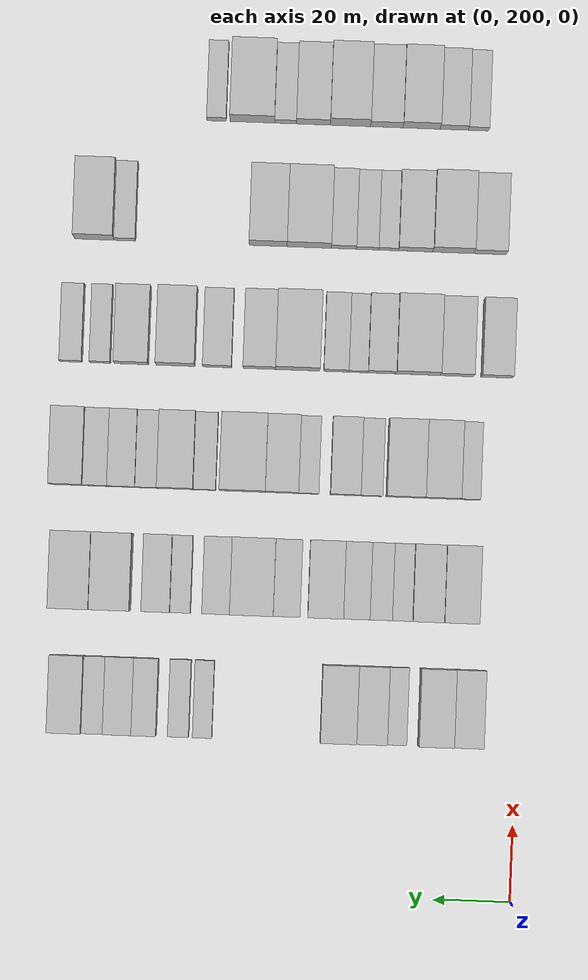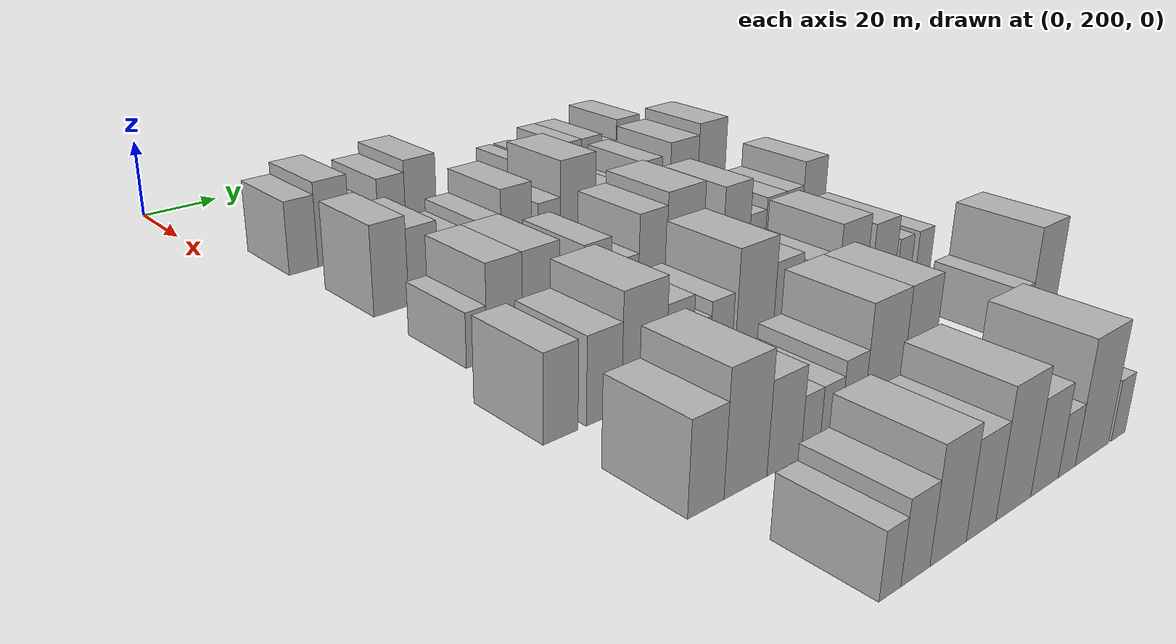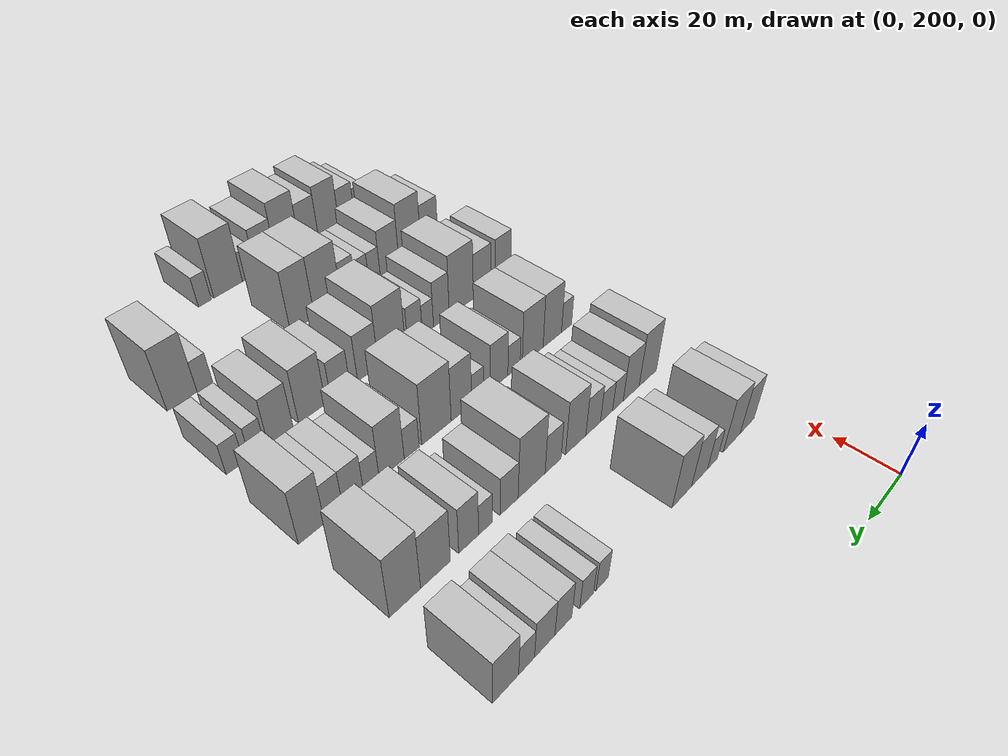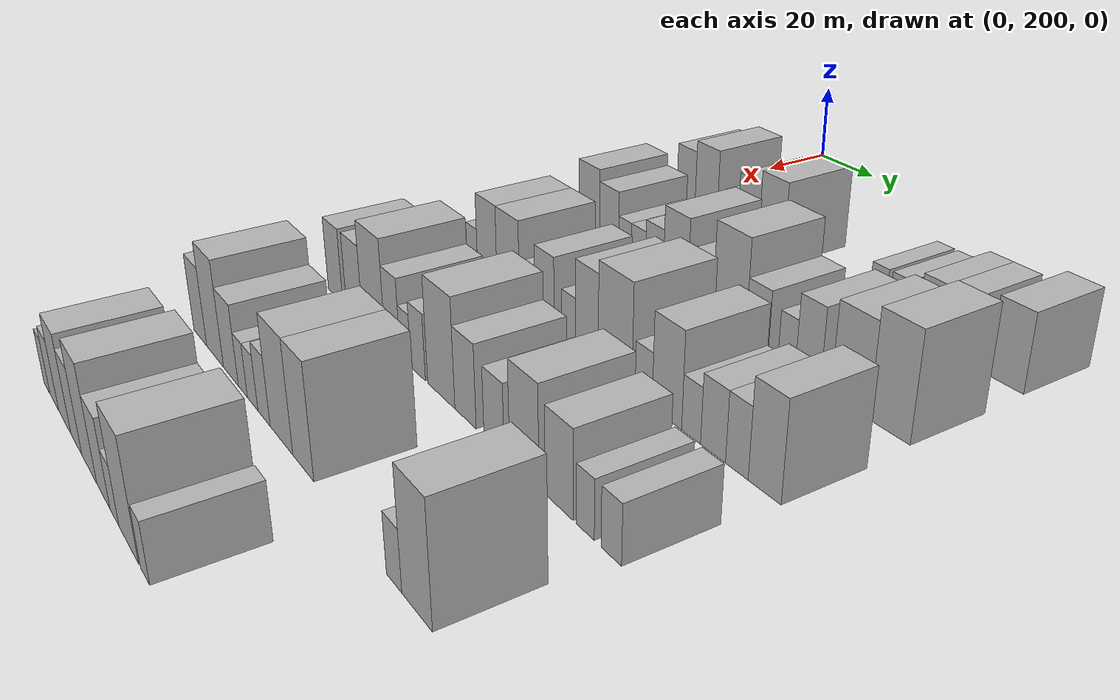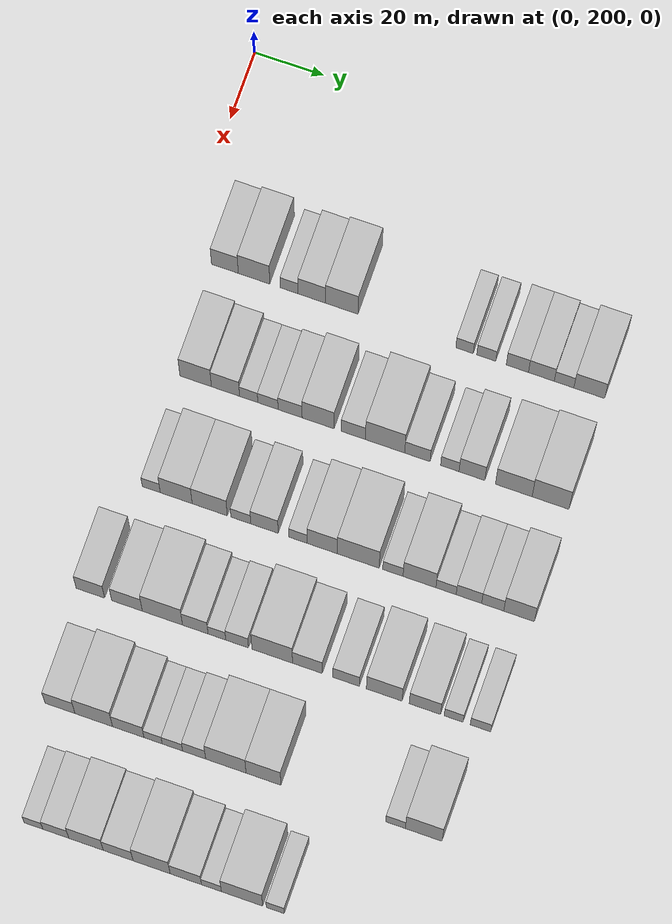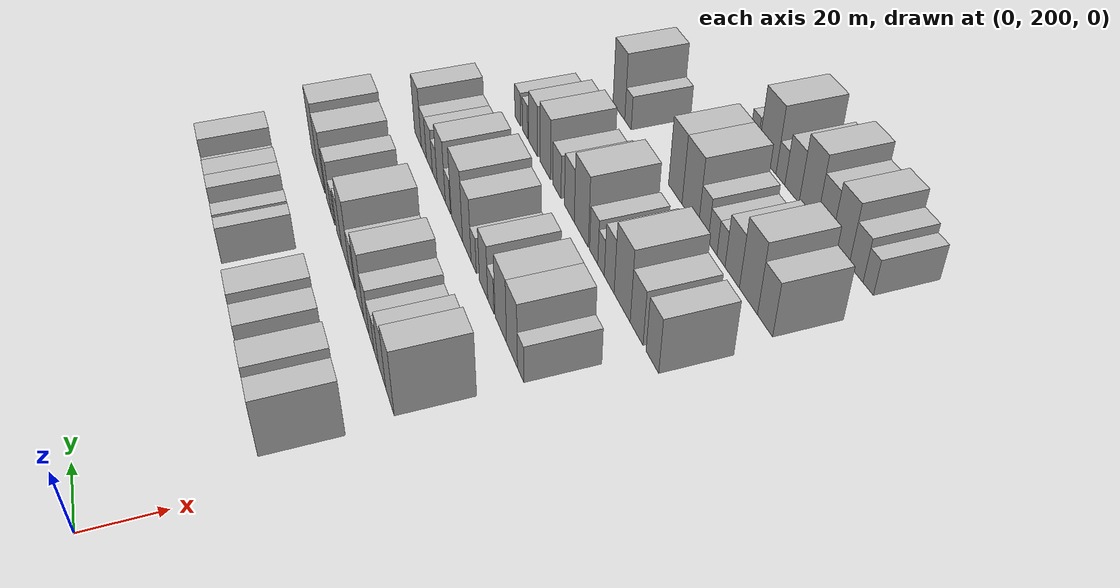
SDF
<sdf version="1.6">
 <world name="default">
  <model name="building_86">
   <static>1</static>
   <pose>50.0000 212.5925 0 0.000000 0.000000 0.000000</pose>
   <link name="link">
    <pose>0 0 9.00 0 0 0</pose>
    <collision name="collision"><geometry><box><size>20.0000 7.6918 18.0000</size></box></geometry></collision>
    <visual name="visual">
     <cast_shadows>0</cast_shadows>
     <geometry><box><size>20.0000 7.6918 18.0000</size></box></geometry>
     <material>
      <script>
       <uri>model://HANNAS_wall/materials/scripts</uri>
       <uri>model://HANNAS_wall/materials/textures</uri>
       <name>vrc/HANNAS_wall</name>
      </script>
     </material>
    </visual>
   </link>
  </model>
  <model name="building_87">
   <static>1</static>
   <pose>50.0000 220.9627 0 0.000000 0.000000 0.000000</pose>
   <link name="link">
    <pose>0 0 10.50 0 0 0</pose>
    <collision name="collision"><geometry><box><size>20.0000 9.0485 21.0000</size></box></geometry></collision>
    <visual name="visual">
     <cast_shadows>0</cast_shadows>
     <geometry><box><size>20.0000 9.0485 21.0000</size></box></geometry>
     <material>
      <script>
       <uri>model://HANNAS_wall/materials/scripts</uri>
       <uri>model://HANNAS_wall/materials/textures</uri>
       <name>vrc/HANNAS_wall</name>
      </script>
     </material>
    </visual>
   </link>
  </model>
  <model name="building_88">
   <static>1</static>
   <pose>50.0000 231.0170 0 0.000000 0.000000 0.000000</pose>
   <link name="link">
    <pose>0 0 6.00 0 0 0</pose>
    <collision name="collision"><geometry><box><size>20.0000 5.0601 12.0000</size></box></geometry></collision>
    <visual name="visual">
     <cast_shadows>0</cast_shadows>
     <geometry><box><size>20.0000 5.0601 12.0000</size></box></geometry>
     <material>
      <script>
       <uri>model://HANNAS_wall/materials/scripts</uri>
       <uri>model://HANNAS_wall/materials/textures</uri>
       <name>vrc/HANNAS_wall</name>
      </script>
     </material>
    </visual>
   </link>
  </model>
  <model name="building_89">
   <static>1</static>
   <pose>50.0000 237.5158 0 0.000000 0.000000 0.000000</pose>
   <link name="link">
    <pose>0 0 9.00 0 0 0</pose>
    <collision name="collision"><geometry><box><size>20.0000 7.9375 18.0000</size></box></geometry></collision>
    <visual name="visual">
     <cast_shadows>0</cast_shadows>
     <geometry><box><size>20.0000 7.9375 18.0000</size></box></geometry>
     <material>
      <script>
       <uri>model://HANNAS_wall/materials/scripts</uri>
       <uri>model://HANNAS_wall/materials/textures</uri>
       <name>vrc/HANNAS_wall</name>
      </script>
     </material>
    </visual>
   </link>
  </model>
  <model name="building_90">
   <static>1</static>
   <pose>50.0000 246.1393 0 0.000000 0.000000 0.000000</pose>
   <link name="link">
    <pose>0 0 10.50 0 0 0</pose>
    <collision name="collision"><geometry><box><size>20.0000 9.3094 21.0000</size></box></geometry></collision>
    <visual name="visual">
     <cast_shadows>0</cast_shadows>
     <geometry><box><size>20.0000 9.3094 21.0000</size></box></geometry>
     <material>
      <script>
       <uri>model://HANNAS_wall/materials/scripts</uri>
       <uri>model://HANNAS_wall/materials/textures</uri>
       <name>vrc/HANNAS_wall</name>
      </script>
     </material>
    </visual>
   </link>
  </model>
  <model name="building_91">
   <static>1</static>
   <pose>50.0000 281.2585 0 0.000000 0.000000 0.000000</pose>
   <link name="link">
    <pose>0 0 6.00 0 0 0</pose>
    <collision name="collision"><geometry><box><size>20.0000 4.9763 12.0000</size></box></geometry></collision>
    <visual name="visual">
     <cast_shadows>0</cast_shadows>
     <geometry><box><size>20.0000 4.9763 12.0000</size></box></geometry>
     <material>
      <script>
       <uri>model://HANNAS_wall/materials/scripts</uri>
       <uri>model://HANNAS_wall/materials/textures</uri>
       <name>vrc/HANNAS_wall</name>
      </script>
     </material>
    </visual>
   </link>
  </model>
  <model name="building_92">
   <static>1</static>
   <pose>50.0000 287.4576 0 0.000000 0.000000 0.000000</pose>
   <link name="link">
    <pose>0 0 6.00 0 0 0</pose>
    <collision name="collision"><geometry><box><size>20.0000 5.4220 12.0000</size></box></geometry></collision>
    <visual name="visual">
     <cast_shadows>0</cast_shadows>
     <geometry><box><size>20.0000 5.4220 12.0000</size></box></geometry>
     <material>
      <script>
       <uri>model://HANNAS_wall/materials/scripts</uri>
       <uri>model://HANNAS_wall/materials/textures</uri>
       <name>vrc/HANNAS_wall</name>
      </script>
     </material>
    </visual>
   </link>
  </model>
  <model name="building_93">
   <static>1</static>
   <pose>50.0000 296.3389 0 0.000000 0.000000 0.000000</pose>
   <link name="link">
    <pose>0 0 7.50 0 0 0</pose>
    <collision name="collision"><geometry><box><size>20.0000 6.3406 15.0000</size></box></geometry></collision>
    <visual name="visual">
     <cast_shadows>0</cast_shadows>
     <geometry><box><size>20.0000 6.3406 15.0000</size></box></geometry>
     <material>
      <script>
       <uri>model://HANNAS_wall/materials/scripts</uri>
       <uri>model://HANNAS_wall/materials/textures</uri>
       <name>vrc/HANNAS_wall</name>
      </script>
     </material>
    </visual>
   </link>
  </model>
  <model name="building_94">
   <static>1</static>
   <pose>50.0000 303.1866 0 0.000000 0.000000 0.000000</pose>
   <link name="link">
    <pose>0 0 7.50 0 0 0</pose>
    <collision name="collision"><geometry><box><size>20.0000 7.3548 15.0000</size></box></geometry></collision>
    <visual name="visual">
     <cast_shadows>0</cast_shadows>
     <geometry><box><size>20.0000 7.3548 15.0000</size></box></geometry>
     <material>
      <script>
       <uri>model://HANNAS_wall/materials/scripts</uri>
       <uri>model://HANNAS_wall/materials/textures</uri>
       <name>vrc/HANNAS_wall</name>
      </script>
     </material>
    </visual>
   </link>
  </model>
  <model name="building_95">
   <static>1</static>
   <pose>50.0000 309.6512 0 0.000000 0.000000 0.000000</pose>
   <link name="link">
    <pose>0 0 6.00 0 0 0</pose>
    <collision name="collision"><geometry><box><size>20.0000 5.5743 12.0000</size></box></geometry></collision>
    <visual name="visual">
     <cast_shadows>0</cast_shadows>
     <geometry><box><size>20.0000 5.5743 12.0000</size></box></geometry>
     <material>
      <script>
       <uri>model://HANNAS_wall/materials/scripts</uri>
       <uri>model://HANNAS_wall/materials/textures</uri>
       <name>vrc/HANNAS_wall</name>
      </script>
     </material>
    </visual>
   </link>
  </model>
  <model name="building_96">
   <static>1</static>
   <pose>50.0000 316.8188 0 0.000000 0.000000 0.000000</pose>
   <link name="link">
    <pose>0 0 9.00 0 0 0</pose>
    <collision name="collision"><geometry><box><size>20.0000 8.7610 18.0000</size></box></geometry></collision>
    <visual name="visual">
     <cast_shadows>0</cast_shadows>
     <geometry><box><size>20.0000 8.7610 18.0000</size></box></geometry>
     <material>
      <script>
       <uri>model://HANNAS_wall/materials/scripts</uri>
       <uri>model://HANNAS_wall/materials/textures</uri>
       <name>vrc/HANNAS_wall</name>
      </script>
     </material>
    </visual>
   </link>
  </model>
  <model name="building_207">
   <static>1</static>
   <pose>82.0000 215.5787 0 0.000000 0.000000 0.000000</pose>
   <link name="link">
    <pose>0 0 10.50 0 0 0</pose>
    <collision name="collision"><geometry><box><size>20.0000 8.9983 21.0000</size></box></geometry></collision>
    <visual name="visual">
     <cast_shadows>0</cast_shadows>
     <geometry><box><size>20.0000 8.9983 21.0000</size></box></geometry>
     <material>
      <script>
       <uri>model://HANNAS_wall/materials/scripts</uri>
       <uri>model://HANNAS_wall/materials/textures</uri>
       <name>vrc/HANNAS_wall</name>
      </script>
     </material>
    </visual>
   </link>
  </model>
  <model name="building_208">
   <static>1</static>
   <pose>82.0000 224.1093 0 0.000000 0.000000 0.000000</pose>
   <link name="link">
    <pose>0 0 9.00 0 0 0</pose>
    <collision name="collision"><geometry><box><size>20.0000 8.0628 18.0000</size></box></geometry></collision>
    <visual name="visual">
     <cast_shadows>0</cast_shadows>
     <geometry><box><size>20.0000 8.0628 18.0000</size></box></geometry>
     <material>
      <script>
       <uri>model://HANNAS_wall/materials/scripts</uri>
       <uri>model://HANNAS_wall/materials/textures</uri>
       <name>vrc/HANNAS_wall</name>
      </script>
     </material>
    </visual>
   </link>
  </model>
  <model name="building_209">
   <static>1</static>
   <pose>82.0000 230.7448 0 0.000000 0.000000 0.000000</pose>
   <link name="link">
    <pose>0 0 6.00 0 0 0</pose>
    <collision name="collision"><geometry><box><size>20.0000 5.2084 12.0000</size></box></geometry></collision>
    <visual name="visual">
     <cast_shadows>0</cast_shadows>
     <geometry><box><size>20.0000 5.2084 12.0000</size></box></geometry>
     <material>
      <script>
       <uri>model://HANNAS_wall/materials/scripts</uri>
       <uri>model://HANNAS_wall/materials/textures</uri>
       <name>vrc/HANNAS_wall</name>
      </script>
     </material>
    </visual>
   </link>
  </model>
  <model name="building_210">
   <static>1</static>
   <pose>82.0000 236.2536 0 0.000000 0.000000 0.000000</pose>
   <link name="link">
    <pose>0 0 6.00 0 0 0</pose>
    <collision name="collision"><geometry><box><size>20.0000 5.8092 12.0000</size></box></geometry></collision>
    <visual name="visual">
     <cast_shadows>0</cast_shadows>
     <geometry><box><size>20.0000 5.8092 12.0000</size></box></geometry>
     <material>
      <script>
       <uri>model://HANNAS_wall/materials/scripts</uri>
       <uri>model://HANNAS_wall/materials/textures</uri>
       <name>vrc/HANNAS_wall</name>
      </script>
     </material>
    </visual>
   </link>
  </model>
  <model name="building_211">
   <static>1</static>
   <pose>82.0000 242.5918 0 0.000000 0.000000 0.000000</pose>
   <link name="link">
    <pose>0 0 7.50 0 0 0</pose>
    <collision name="collision"><geometry><box><size>20.0000 6.8672 15.0000</size></box></geometry></collision>
    <visual name="visual">
     <cast_shadows>0</cast_shadows>
     <geometry><box><size>20.0000 6.8672 15.0000</size></box></geometry>
     <material>
      <script>
       <uri>model://HANNAS_wall/materials/scripts</uri>
       <uri>model://HANNAS_wall/materials/textures</uri>
       <name>vrc/HANNAS_wall</name>
      </script>
     </material>
    </visual>
   </link>
  </model>
  <model name="building_212">
   <static>1</static>
   <pose>82.0000 250.5937 0 0.000000 0.000000 0.000000</pose>
   <link name="link">
    <pose>0 0 10.50 0 0 0</pose>
    <collision name="collision"><geometry><box><size>20.0000 9.1366 21.0000</size></box></geometry></collision>
    <visual name="visual">
     <cast_shadows>0</cast_shadows>
     <geometry><box><size>20.0000 9.1366 21.0000</size></box></geometry>
     <material>
      <script>
       <uri>model://HANNAS_wall/materials/scripts</uri>
       <uri>model://HANNAS_wall/materials/textures</uri>
       <name>vrc/HANNAS_wall</name>
      </script>
     </material>
    </visual>
   </link>
  </model>
  <model name="building_213">
   <static>1</static>
   <pose>82.0000 260.6121 0 0.000000 0.000000 0.000000</pose>
   <link name="link">
    <pose>0 0 7.50 0 0 0</pose>
    <collision name="collision"><geometry><box><size>20.0000 6.9003 15.0000</size></box></geometry></collision>
    <visual name="visual">
     <cast_shadows>0</cast_shadows>
     <geometry><box><size>20.0000 6.9003 15.0000</size></box></geometry>
     <material>
      <script>
       <uri>model://HANNAS_wall/materials/scripts</uri>
       <uri>model://HANNAS_wall/materials/textures</uri>
       <name>vrc/HANNAS_wall</name>
      </script>
     </material>
    </visual>
   </link>
  </model>
  <model name="building_214">
   <static>1</static>
   <pose>82.0000 269.6684 0 0.000000 0.000000 0.000000</pose>
   <link name="link">
    <pose>0 0 12.00 0 0 0</pose>
    <collision name="collision"><geometry><box><size>20.0000 11.2123 24.0000</size></box></geometry></collision>
    <visual name="visual">
     <cast_shadows>0</cast_shadows>
     <geometry><box><size>20.0000 11.2123 24.0000</size></box></geometry>
     <material>
      <script>
       <uri>model://HANNAS_wall/materials/scripts</uri>
       <uri>model://HANNAS_wall/materials/textures</uri>
       <name>vrc/HANNAS_wall</name>
      </script>
     </material>
    </visual>
   </link>
  </model>
  <model name="building_215">
   <static>1</static>
   <pose>82.0000 278.8816 0 0.000000 0.000000 0.000000</pose>
   <link name="link">
    <pose>0 0 7.50 0 0 0</pose>
    <collision name="collision"><geometry><box><size>20.0000 7.2141 15.0000</size></box></geometry></collision>
    <visual name="visual">
     <cast_shadows>0</cast_shadows>
     <geometry><box><size>20.0000 7.2141 15.0000</size></box></geometry>
     <material>
      <script>
       <uri>model://HANNAS_wall/materials/scripts</uri>
       <uri>model://HANNAS_wall/materials/textures</uri>
       <name>vrc/HANNAS_wall</name>
      </script>
     </material>
    </visual>
   </link>
  </model>
  <model name="building_216">
   <static>1</static>
   <pose>82.0000 288.1062 0 0.000000 0.000000 0.000000</pose>
   <link name="link">
    <pose>0 0 6.00 0 0 0</pose>
    <collision name="collision"><geometry><box><size>20.0000 5.2350 12.0000</size></box></geometry></collision>
    <visual name="visual">
     <cast_shadows>0</cast_shadows>
     <geometry><box><size>20.0000 5.2350 12.0000</size></box></geometry>
     <material>
      <script>
       <uri>model://HANNAS_wall/materials/scripts</uri>
       <uri>model://HANNAS_wall/materials/textures</uri>
       <name>vrc/HANNAS_wall</name>
      </script>
     </material>
    </visual>
   </link>
  </model>
  <model name="building_217">
   <static>1</static>
   <pose>82.0000 294.3972 0 0.000000 0.000000 0.000000</pose>
   <link name="link">
    <pose>0 0 9.00 0 0 0</pose>
    <collision name="collision"><geometry><box><size>20.0000 7.3469 18.0000</size></box></geometry></collision>
    <visual name="visual">
     <cast_shadows>0</cast_shadows>
     <geometry><box><size>20.0000 7.3469 18.0000</size></box></geometry>
     <material>
      <script>
       <uri>model://HANNAS_wall/materials/scripts</uri>
       <uri>model://HANNAS_wall/materials/textures</uri>
       <name>vrc/HANNAS_wall</name>
      </script>
     </material>
    </visual>
   </link>
  </model>
  <model name="building_218">
   <static>1</static>
   <pose>82.0000 306.2786 0 0.000000 0.000000 0.000000</pose>
   <link name="link">
    <pose>0 0 10.50 0 0 0</pose>
    <collision name="collision"><geometry><box><size>20.0000 10.4159 21.0000</size></box></geometry></collision>
    <visual name="visual">
     <cast_shadows>0</cast_shadows>
     <geometry><box><size>20.0000 10.4159 21.0000</size></box></geometry>
     <material>
      <script>
       <uri>model://HANNAS_wall/materials/scripts</uri>
       <uri>model://HANNAS_wall/materials/textures</uri>
       <name>vrc/HANNAS_wall</name>
      </script>
     </material>
    </visual>
   </link>
  </model>
  <model name="building_219">
   <static>1</static>
   <pose>82.0000 316.7178 0 0.000000 0.000000 0.000000</pose>
   <link name="link">
    <pose>0 0 12.00 0 0 0</pose>
    <collision name="collision"><geometry><box><size>20.0000 10.4625 24.0000</size></box></geometry></collision>
    <visual name="visual">
     <cast_shadows>0</cast_shadows>
     <geometry><box><size>20.0000 10.4625 24.0000</size></box></geometry>
     <material>
      <script>
       <uri>model://HANNAS_wall/materials/scripts</uri>
       <uri>model://HANNAS_wall/materials/textures</uri>
       <name>vrc/HANNAS_wall</name>
      </script>
     </material>
    </visual>
   </link>
  </model>
  <model name="building_328">
   <static>1</static>
   <pose>114.0000 214.3067 0 0.000000 0.000000 0.000000</pose>
   <link name="link">
    <pose>0 0 6.00 0 0 0</pose>
    <collision name="collision"><geometry><box><size>20.0000 5.1264 12.0000</size></box></geometry></collision>
    <visual name="visual">
     <cast_shadows>0</cast_shadows>
     <geometry><box><size>20.0000 5.1264 12.0000</size></box></geometry>
     <material>
      <script>
       <uri>model://HANNAS_wall/materials/scripts</uri>
       <uri>model://HANNAS_wall/materials/textures</uri>
       <name>vrc/HANNAS_wall</name>
      </script>
     </material>
    </visual>
   </link>
  </model>
  <model name="building_329">
   <static>1</static>
   <pose>114.0000 221.4326 0 0.000000 0.000000 0.000000</pose>
   <link name="link">
    <pose>0 0 10.50 0 0 0</pose>
    <collision name="collision"><geometry><box><size>20.0000 9.1253 21.0000</size></box></geometry></collision>
    <visual name="visual">
     <cast_shadows>0</cast_shadows>
     <geometry><box><size>20.0000 9.1253 21.0000</size></box></geometry>
     <material>
      <script>
       <uri>model://HANNAS_wall/materials/scripts</uri>
       <uri>model://HANNAS_wall/materials/textures</uri>
       <name>vrc/HANNAS_wall</name>
      </script>
     </material>
    </visual>
   </link>
  </model>
  <model name="building_330">
   <static>1</static>
   <pose>114.0000 230.9983 0 0.000000 0.000000 0.000000</pose>
   <link name="link">
    <pose>0 0 10.50 0 0 0</pose>
    <collision name="collision"><geometry><box><size>20.0000 10.0061 21.0000</size></box></geometry></collision>
    <visual name="visual">
     <cast_shadows>0</cast_shadows>
     <geometry><box><size>20.0000 10.0061 21.0000</size></box></geometry>
     <material>
      <script>
       <uri>model://HANNAS_wall/materials/scripts</uri>
       <uri>model://HANNAS_wall/materials/textures</uri>
       <name>vrc/HANNAS_wall</name>
      </script>
     </material>
    </visual>
   </link>
  </model>
  <model name="building_331">
   <static>1</static>
   <pose>114.0000 239.8361 0 0.000000 0.000000 0.000000</pose>
   <link name="link">
    <pose>0 0 6.00 0 0 0</pose>
    <collision name="collision"><geometry><box><size>20.0000 5.6695 12.0000</size></box></geometry></collision>
    <visual name="visual">
     <cast_shadows>0</cast_shadows>
     <geometry><box><size>20.0000 5.6695 12.0000</size></box></geometry>
     <material>
      <script>
       <uri>model://HANNAS_wall/materials/scripts</uri>
       <uri>model://HANNAS_wall/materials/textures</uri>
       <name>vrc/HANNAS_wall</name>
      </script>
     </material>
    </visual>
   </link>
  </model>
  <model name="building_332">
   <static>1</static>
   <pose>114.0000 246.5737 0 0.000000 0.000000 0.000000</pose>
   <link name="link">
    <pose>0 0 9.00 0 0 0</pose>
    <collision name="collision"><geometry><box><size>20.0000 7.8057 18.0000</size></box></geometry></collision>
    <visual name="visual">
     <cast_shadows>0</cast_shadows>
     <geometry><box><size>20.0000 7.8057 18.0000</size></box></geometry>
     <material>
      <script>
       <uri>model://HANNAS_wall/materials/scripts</uri>
       <uri>model://HANNAS_wall/materials/textures</uri>
       <name>vrc/HANNAS_wall</name>
      </script>
     </material>
    </visual>
   </link>
  </model>
  <model name="building_333">
   <static>1</static>
   <pose>114.0000 256.0906 0 0.000000 0.000000 0.000000</pose>
   <link name="link">
    <pose>0 0 6.00 0 0 0</pose>
    <collision name="collision"><geometry><box><size>20.0000 5.2281 12.0000</size></box></geometry></collision>
    <visual name="visual">
     <cast_shadows>0</cast_shadows>
     <geometry><box><size>20.0000 5.2281 12.0000</size></box></geometry>
     <material>
      <script>
       <uri>model://HANNAS_wall/materials/scripts</uri>
       <uri>model://HANNAS_wall/materials/textures</uri>
       <name>vrc/HANNAS_wall</name>
      </script>
     </material>
    </visual>
   </link>
  </model>
  <model name="building_334">
   <static>1</static>
   <pose>114.0000 262.9880 0 0.000000 0.000000 0.000000</pose>
   <link name="link">
    <pose>0 0 10.50 0 0 0</pose>
    <collision name="collision"><geometry><box><size>20.0000 8.5668 21.0000</size></box></geometry></collision>
    <visual name="visual">
     <cast_shadows>0</cast_shadows>
     <geometry><box><size>20.0000 8.5668 21.0000</size></box></geometry>
     <material>
      <script>
       <uri>model://HANNAS_wall/materials/scripts</uri>
       <uri>model://HANNAS_wall/materials/textures</uri>
       <name>vrc/HANNAS_wall</name>
      </script>
     </material>
    </visual>
   </link>
  </model>
  <model name="building_335">
   <static>1</static>
   <pose>114.0000 273.2114 0 0.000000 0.000000 0.000000</pose>
   <link name="link">
    <pose>0 0 12.00 0 0 0</pose>
    <collision name="collision"><geometry><box><size>20.0000 11.8800 24.0000</size></box></geometry></collision>
    <visual name="visual">
     <cast_shadows>0</cast_shadows>
     <geometry><box><size>20.0000 11.8800 24.0000</size></box></geometry>
     <material>
      <script>
       <uri>model://HANNAS_wall/materials/scripts</uri>
       <uri>model://HANNAS_wall/materials/textures</uri>
       <name>vrc/HANNAS_wall</name>
      </script>
     </material>
    </visual>
   </link>
  </model>
  <model name="building_336">
   <static>1</static>
   <pose>114.0000 283.0366 0 0.000000 0.000000 0.000000</pose>
   <link name="link">
    <pose>0 0 6.00 0 0 0</pose>
    <collision name="collision"><geometry><box><size>20.0000 5.7704 12.0000</size></box></geometry></collision>
    <visual name="visual">
     <cast_shadows>0</cast_shadows>
     <geometry><box><size>20.0000 5.7704 12.0000</size></box></geometry>
     <material>
      <script>
       <uri>model://HANNAS_wall/materials/scripts</uri>
       <uri>model://HANNAS_wall/materials/textures</uri>
       <name>vrc/HANNAS_wall</name>
      </script>
     </material>
    </visual>
   </link>
  </model>
  <model name="building_337">
   <static>1</static>
   <pose>114.0000 290.5849 0 0.000000 0.000000 0.000000</pose>
   <link name="link">
    <pose>0 0 10.50 0 0 0</pose>
    <collision name="collision"><geometry><box><size>20.0000 9.3262 21.0000</size></box></geometry></collision>
    <visual name="visual">
     <cast_shadows>0</cast_shadows>
     <geometry><box><size>20.0000 9.3262 21.0000</size></box></geometry>
     <material>
      <script>
       <uri>model://HANNAS_wall/materials/scripts</uri>
       <uri>model://HANNAS_wall/materials/textures</uri>
       <name>vrc/HANNAS_wall</name>
      </script>
     </material>
    </visual>
   </link>
  </model>
  <model name="building_338">
   <static>1</static>
   <pose>114.0000 298.1025 0 0.000000 0.000000 0.000000</pose>
   <link name="link">
    <pose>0 0 6.00 0 0 0</pose>
    <collision name="collision"><geometry><box><size>20.0000 5.7090 12.0000</size></box></geometry></collision>
    <visual name="visual">
     <cast_shadows>0</cast_shadows>
     <geometry><box><size>20.0000 5.7090 12.0000</size></box></geometry>
     <material>
      <script>
       <uri>model://HANNAS_wall/materials/scripts</uri>
       <uri>model://HANNAS_wall/materials/textures</uri>
       <name>vrc/HANNAS_wall</name>
      </script>
     </material>
    </visual>
   </link>
  </model>
  <model name="building_339">
   <static>1</static>
   <pose>114.0000 304.5647 0 0.000000 0.000000 0.000000</pose>
   <link name="link">
    <pose>0 0 7.50 0 0 0</pose>
    <collision name="collision"><geometry><box><size>20.0000 7.2154 15.0000</size></box></geometry></collision>
    <visual name="visual">
     <cast_shadows>0</cast_shadows>
     <geometry><box><size>20.0000 7.2154 15.0000</size></box></geometry>
     <material>
      <script>
       <uri>model://HANNAS_wall/materials/scripts</uri>
       <uri>model://HANNAS_wall/materials/textures</uri>
       <name>vrc/HANNAS_wall</name>
      </script>
     </material>
    </visual>
   </link>
  </model>
  <model name="building_340">
   <static>1</static>
   <pose>114.0000 311.2963 0 0.000000 0.000000 0.000000</pose>
   <link name="link">
    <pose>0 0 7.50 0 0 0</pose>
    <collision name="collision"><geometry><box><size>20.0000 6.2478 15.0000</size></box></geometry></collision>
    <visual name="visual">
     <cast_shadows>0</cast_shadows>
     <geometry><box><size>20.0000 6.2478 15.0000</size></box></geometry>
     <material>
      <script>
       <uri>model://HANNAS_wall/materials/scripts</uri>
       <uri>model://HANNAS_wall/materials/textures</uri>
       <name>vrc/HANNAS_wall</name>
      </script>
     </material>
    </visual>
   </link>
  </model>
  <model name="building_341">
   <static>1</static>
   <pose>114.0000 318.7489 0 0.000000 0.000000 0.000000</pose>
   <link name="link">
    <pose>0 0 10.50 0 0 0</pose>
    <collision name="collision"><geometry><box><size>20.0000 8.6575 21.0000</size></box></geometry></collision>
    <visual name="visual">
     <cast_shadows>0</cast_shadows>
     <geometry><box><size>20.0000 8.6575 21.0000</size></box></geometry>
     <material>
      <script>
       <uri>model://HANNAS_wall/materials/scripts</uri>
       <uri>model://HANNAS_wall/materials/textures</uri>
       <name>vrc/HANNAS_wall</name>
      </script>
     </material>
    </visual>
   </link>
  </model>
  <model name="building_441">
   <static>1</static>
   <pose>146.0000 208.4734 0 0.000000 0.000000 0.000000</pose>
   <link name="link">
    <pose>0 0 9.00 0 0 0</pose>
    <collision name="collision"><geometry><box><size>20.0000 8.1113 18.0000</size></box></geometry></collision>
    <visual name="visual">
     <cast_shadows>0</cast_shadows>
     <geometry><box><size>20.0000 8.1113 18.0000</size></box></geometry>
     <material>
      <script>
       <uri>model://HANNAS_wall/materials/scripts</uri>
       <uri>model://HANNAS_wall/materials/textures</uri>
       <name>vrc/HANNAS_wall</name>
      </script>
     </material>
    </visual>
   </link>
  </model>
  <model name="building_442">
   <static>1</static>
   <pose>146.0000 218.8759 0 0.000000 0.000000 0.000000</pose>
   <link name="link">
    <pose>0 0 9.00 0 0 0</pose>
    <collision name="collision"><geometry><box><size>20.0000 8.6936 18.0000</size></box></geometry></collision>
    <visual name="visual">
     <cast_shadows>0</cast_shadows>
     <geometry><box><size>20.0000 8.6936 18.0000</size></box></geometry>
     <material>
      <script>
       <uri>model://HANNAS_wall/materials/scripts</uri>
       <uri>model://HANNAS_wall/materials/textures</uri>
       <name>vrc/HANNAS_wall</name>
      </script>
     </material>
    </visual>
   </link>
  </model>
  <model name="building_443">
   <static>1</static>
   <pose>146.0000 228.9347 0 0.000000 0.000000 0.000000</pose>
   <link name="link">
    <pose>0 0 12.00 0 0 0</pose>
    <collision name="collision"><geometry><box><size>20.0000 11.4240 24.0000</size></box></geometry></collision>
    <visual name="visual">
     <cast_shadows>0</cast_shadows>
     <geometry><box><size>20.0000 11.4240 24.0000</size></box></geometry>
     <material>
      <script>
       <uri>model://HANNAS_wall/materials/scripts</uri>
       <uri>model://HANNAS_wall/materials/textures</uri>
       <name>vrc/HANNAS_wall</name>
      </script>
     </material>
    </visual>
   </link>
  </model>
  <model name="building_444">
   <static>1</static>
   <pose>146.0000 238.2728 0 0.000000 0.000000 0.000000</pose>
   <link name="link">
    <pose>0 0 9.00 0 0 0</pose>
    <collision name="collision"><geometry><box><size>20.0000 7.2522 18.0000</size></box></geometry></collision>
    <visual name="visual">
     <cast_shadows>0</cast_shadows>
     <geometry><box><size>20.0000 7.2522 18.0000</size></box></geometry>
     <material>
      <script>
       <uri>model://HANNAS_wall/materials/scripts</uri>
       <uri>model://HANNAS_wall/materials/textures</uri>
       <name>vrc/HANNAS_wall</name>
      </script>
     </material>
    </visual>
   </link>
  </model>
  <model name="building_445">
   <static>1</static>
   <pose>146.0000 244.4002 0 0.000000 0.000000 0.000000</pose>
   <link name="link">
    <pose>0 0 6.00 0 0 0</pose>
    <collision name="collision"><geometry><box><size>20.0000 5.0025 12.0000</size></box></geometry></collision>
    <visual name="visual">
     <cast_shadows>0</cast_shadows>
     <geometry><box><size>20.0000 5.0025 12.0000</size></box></geometry>
     <material>
      <script>
       <uri>model://HANNAS_wall/materials/scripts</uri>
       <uri>model://HANNAS_wall/materials/textures</uri>
       <name>vrc/HANNAS_wall</name>
      </script>
     </material>
    </visual>
   </link>
  </model>
  <model name="building_446">
   <static>1</static>
   <pose>146.0000 250.1203 0 0.000000 0.000000 0.000000</pose>
   <link name="link">
    <pose>0 0 7.50 0 0 0</pose>
    <collision name="collision"><geometry><box><size>20.0000 6.4378 15.0000</size></box></geometry></collision>
    <visual name="visual">
     <cast_shadows>0</cast_shadows>
     <geometry><box><size>20.0000 6.4378 15.0000</size></box></geometry>
     <material>
      <script>
       <uri>model://HANNAS_wall/materials/scripts</uri>
       <uri>model://HANNAS_wall/materials/textures</uri>
       <name>vrc/HANNAS_wall</name>
      </script>
     </material>
    </visual>
   </link>
  </model>
  <model name="building_447">
   <static>1</static>
   <pose>146.0000 260.0743 0 0.000000 0.000000 0.000000</pose>
   <link name="link">
    <pose>0 0 12.00 0 0 0</pose>
    <collision name="collision"><geometry><box><size>20.0000 11.4702 24.0000</size></box></geometry></collision>
    <visual name="visual">
     <cast_shadows>0</cast_shadows>
     <geometry><box><size>20.0000 11.4702 24.0000</size></box></geometry>
     <material>
      <script>
       <uri>model://HANNAS_wall/materials/scripts</uri>
       <uri>model://HANNAS_wall/materials/textures</uri>
       <name>vrc/HANNAS_wall</name>
      </script>
     </material>
    </visual>
   </link>
  </model>
  <model name="building_448">
   <static>1</static>
   <pose>146.0000 270.0241 0 0.000000 0.000000 0.000000</pose>
   <link name="link">
    <pose>0 0 9.00 0 0 0</pose>
    <collision name="collision"><geometry><box><size>20.0000 8.4294 18.0000</size></box></geometry></collision>
    <visual name="visual">
     <cast_shadows>0</cast_shadows>
     <geometry><box><size>20.0000 8.4294 18.0000</size></box></geometry>
     <material>
      <script>
       <uri>model://HANNAS_wall/materials/scripts</uri>
       <uri>model://HANNAS_wall/materials/textures</uri>
       <name>vrc/HANNAS_wall</name>
      </script>
     </material>
    </visual>
   </link>
  </model>
  <model name="building_449">
   <static>1</static>
   <pose>146.0000 280.9642 0 0.000000 0.000000 0.000000</pose>
   <link name="link">
    <pose>0 0 7.50 0 0 0</pose>
    <collision name="collision"><geometry><box><size>20.0000 7.4506 15.0000</size></box></geometry></collision>
    <visual name="visual">
     <cast_shadows>0</cast_shadows>
     <geometry><box><size>20.0000 7.4506 15.0000</size></box></geometry>
     <material>
      <script>
       <uri>model://HANNAS_wall/materials/scripts</uri>
       <uri>model://HANNAS_wall/materials/textures</uri>
       <name>vrc/HANNAS_wall</name>
      </script>
     </material>
    </visual>
   </link>
  </model>
  <model name="building_450">
   <static>1</static>
   <pose>146.0000 291.7281 0 0.000000 0.000000 0.000000</pose>
   <link name="link">
    <pose>0 0 10.50 0 0 0</pose>
    <collision name="collision"><geometry><box><size>20.0000 10.0772 21.0000</size></box></geometry></collision>
    <visual name="visual">
     <cast_shadows>0</cast_shadows>
     <geometry><box><size>20.0000 10.0772 21.0000</size></box></geometry>
     <material>
      <script>
       <uri>model://HANNAS_wall/materials/scripts</uri>
       <uri>model://HANNAS_wall/materials/textures</uri>
       <name>vrc/HANNAS_wall</name>
      </script>
     </material>
    </visual>
   </link>
  </model>
  <model name="building_451">
   <static>1</static>
   <pose>146.0000 303.1948 0 0.000000 0.000000 0.000000</pose>
   <link name="link">
    <pose>0 0 9.00 0 0 0</pose>
    <collision name="collision"><geometry><box><size>20.0000 8.8563 18.0000</size></box></geometry></collision>
    <visual name="visual">
     <cast_shadows>0</cast_shadows>
     <geometry><box><size>20.0000 8.8563 18.0000</size></box></geometry>
     <material>
      <script>
       <uri>model://HANNAS_wall/materials/scripts</uri>
       <uri>model://HANNAS_wall/materials/textures</uri>
       <name>vrc/HANNAS_wall</name>
      </script>
     </material>
    </visual>
   </link>
  </model>
  <model name="building_452">
   <static>1</static>
   <pose>146.0000 311.2973 0 0.000000 0.000000 0.000000</pose>
   <link name="link">
    <pose>0 0 6.00 0 0 0</pose>
    <collision name="collision"><geometry><box><size>20.0000 5.3486 12.0000</size></box></geometry></collision>
    <visual name="visual">
     <cast_shadows>0</cast_shadows>
     <geometry><box><size>20.0000 5.3486 12.0000</size></box></geometry>
     <material>
      <script>
       <uri>model://HANNAS_wall/materials/scripts</uri>
       <uri>model://HANNAS_wall/materials/textures</uri>
       <name>vrc/HANNAS_wall</name>
      </script>
     </material>
    </visual>
   </link>
  </model>
  <model name="building_453">
   <static>1</static>
   <pose>146.0000 318.8656 0 0.000000 0.000000 0.000000</pose>
   <link name="link">
    <pose>0 0 6.00 0 0 0</pose>
    <collision name="collision"><geometry><box><size>20.0000 5.7880 12.0000</size></box></geometry></collision>
    <visual name="visual">
     <cast_shadows>0</cast_shadows>
     <geometry><box><size>20.0000 5.7880 12.0000</size></box></geometry>
     <material>
      <script>
       <uri>model://HANNAS_wall/materials/scripts</uri>
       <uri>model://HANNAS_wall/materials/textures</uri>
       <name>vrc/HANNAS_wall</name>
      </script>
     </material>
    </visual>
   </link>
  </model>
  <model name="building_556">
   <static>1</static>
   <pose>178.0000 211.3995 0 0.000000 0.000000 0.000000</pose>
   <link name="link">
    <pose>0 0 9.00 0 0 0</pose>
    <collision name="collision"><geometry><box><size>20.0000 8.5190 18.0000</size></box></geometry></collision>
    <visual name="visual">
     <cast_shadows>0</cast_shadows>
     <geometry><box><size>20.0000 8.5190 18.0000</size></box></geometry>
     <material>
      <script>
       <uri>model://HANNAS_wall/materials/scripts</uri>
       <uri>model://HANNAS_wall/materials/textures</uri>
       <name>vrc/HANNAS_wall</name>
      </script>
     </material>
    </visual>
   </link>
  </model>
  <model name="building_557">
   <static>1</static>
   <pose>178.0000 220.9777 0 0.000000 0.000000 0.000000</pose>
   <link name="link">
    <pose>0 0 12.00 0 0 0</pose>
    <collision name="collision"><geometry><box><size>20.0000 10.6374 24.0000</size></box></geometry></collision>
    <visual name="visual">
     <cast_shadows>0</cast_shadows>
     <geometry><box><size>20.0000 10.6374 24.0000</size></box></geometry>
     <material>
      <script>
       <uri>model://HANNAS_wall/materials/scripts</uri>
       <uri>model://HANNAS_wall/materials/textures</uri>
       <name>vrc/HANNAS_wall</name>
      </script>
     </material>
    </visual>
   </link>
  </model>
  <model name="building_558">
   <static>1</static>
   <pose>178.0000 230.7363 0 0.000000 0.000000 0.000000</pose>
   <link name="link">
    <pose>0 0 9.00 0 0 0</pose>
    <collision name="collision"><geometry><box><size>20.0000 8.8798 18.0000</size></box></geometry></collision>
    <visual name="visual">
     <cast_shadows>0</cast_shadows>
     <geometry><box><size>20.0000 8.8798 18.0000</size></box></geometry>
     <material>
      <script>
       <uri>model://HANNAS_wall/materials/scripts</uri>
       <uri>model://HANNAS_wall/materials/textures</uri>
       <name>vrc/HANNAS_wall</name>
      </script>
     </material>
    </visual>
   </link>
  </model>
  <model name="building_559">
   <static>1</static>
   <pose>178.0000 237.7463 0 0.000000 0.000000 0.000000</pose>
   <link name="link">
    <pose>0 0 6.00 0 0 0</pose>
    <collision name="collision"><geometry><box><size>20.0000 5.1402 12.0000</size></box></geometry></collision>
    <visual name="visual">
     <cast_shadows>0</cast_shadows>
     <geometry><box><size>20.0000 5.1402 12.0000</size></box></geometry>
     <material>
      <script>
       <uri>model://HANNAS_wall/materials/scripts</uri>
       <uri>model://HANNAS_wall/materials/textures</uri>
       <name>vrc/HANNAS_wall</name>
      </script>
     </material>
    </visual>
   </link>
  </model>
  <model name="building_560">
   <static>1</static>
   <pose>178.0000 243.2070 0 0.000000 0.000000 0.000000</pose>
   <link name="link">
    <pose>0 0 6.00 0 0 0</pose>
    <collision name="collision"><geometry><box><size>20.0000 5.7811 12.0000</size></box></geometry></collision>
    <visual name="visual">
     <cast_shadows>0</cast_shadows>
     <geometry><box><size>20.0000 5.7811 12.0000</size></box></geometry>
     <material>
      <script>
       <uri>model://HANNAS_wall/materials/scripts</uri>
       <uri>model://HANNAS_wall/materials/textures</uri>
       <name>vrc/HANNAS_wall</name>
      </script>
     </material>
    </visual>
   </link>
  </model>
  <model name="building_561">
   <static>1</static>
   <pose>178.0000 249.3544 0 0.000000 0.000000 0.000000</pose>
   <link name="link">
    <pose>0 0 7.50 0 0 0</pose>
    <collision name="collision"><geometry><box><size>20.0000 6.5136 15.0000</size></box></geometry></collision>
    <visual name="visual">
     <cast_shadows>0</cast_shadows>
     <geometry><box><size>20.0000 6.5136 15.0000</size></box></geometry>
     <material>
      <script>
       <uri>model://HANNAS_wall/materials/scripts</uri>
       <uri>model://HANNAS_wall/materials/textures</uri>
       <name>vrc/HANNAS_wall</name>
      </script>
     </material>
    </visual>
   </link>
  </model>
  <model name="building_562">
   <static>1</static>
   <pose>178.0000 258.3070 0 0.000000 0.000000 0.000000</pose>
   <link name="link">
    <pose>0 0 12.00 0 0 0</pose>
    <collision name="collision"><geometry><box><size>20.0000 11.3916 24.0000</size></box></geometry></collision>
    <visual name="visual">
     <cast_shadows>0</cast_shadows>
     <geometry><box><size>20.0000 11.3916 24.0000</size></box></geometry>
     <material>
      <script>
       <uri>model://HANNAS_wall/materials/scripts</uri>
       <uri>model://HANNAS_wall/materials/textures</uri>
       <name>vrc/HANNAS_wall</name>
      </script>
     </material>
    </visual>
   </link>
  </model>
  <model name="building_563">
   <static>1</static>
   <pose>178.0000 268.9097 0 0.000000 0.000000 0.000000</pose>
   <link name="link">
    <pose>0 0 12.00 0 0 0</pose>
    <collision name="collision"><geometry><box><size>20.0000 9.8137 24.0000</size></box></geometry></collision>
    <visual name="visual">
     <cast_shadows>0</cast_shadows>
     <geometry><box><size>20.0000 9.8137 24.0000</size></box></geometry>
     <material>
      <script>
       <uri>model://HANNAS_wall/materials/scripts</uri>
       <uri>model://HANNAS_wall/materials/textures</uri>
       <name>vrc/HANNAS_wall</name>
      </script>
     </material>
    </visual>
   </link>
  </model>
  <model name="building_564">
   <static>1</static>
   <pose>178.0000 306.0644 0 0.000000 0.000000 0.000000</pose>
   <link name="link">
    <pose>0 0 6.00 0 0 0</pose>
    <collision name="collision"><geometry><box><size>20.0000 5.4986 12.0000</size></box></geometry></collision>
    <visual name="visual">
     <cast_shadows>0</cast_shadows>
     <geometry><box><size>20.0000 5.4986 12.0000</size></box></geometry>
     <material>
      <script>
       <uri>model://HANNAS_wall/materials/scripts</uri>
       <uri>model://HANNAS_wall/materials/textures</uri>
       <name>vrc/HANNAS_wall</name>
      </script>
     </material>
    </visual>
   </link>
  </model>
  <model name="building_565">
   <static>1</static>
   <pose>178.0000 313.9587 0 0.000000 0.000000 0.000000</pose>
   <link name="link">
    <pose>0 0 12.00 0 0 0</pose>
    <collision name="collision"><geometry><box><size>20.0000 10.2899 24.0000</size></box></geometry></collision>
    <visual name="visual">
     <cast_shadows>0</cast_shadows>
     <geometry><box><size>20.0000 10.2899 24.0000</size></box></geometry>
     <material>
      <script>
       <uri>model://HANNAS_wall/materials/scripts</uri>
       <uri>model://HANNAS_wall/materials/textures</uri>
       <name>vrc/HANNAS_wall</name>
      </script>
     </material>
    </visual>
   </link>
  </model>
  <model name="building_673">
   <static>1</static>
   <pose>210.0000 215.5161 0 0.000000 0.000000 0.000000</pose>
   <link name="link">
    <pose>0 0 6.00 0 0 0</pose>
    <collision name="collision"><geometry><box><size>20.0000 5.2811 12.0000</size></box></geometry></collision>
    <visual name="visual">
     <cast_shadows>0</cast_shadows>
     <geometry><box><size>20.0000 5.2811 12.0000</size></box></geometry>
     <material>
      <script>
       <uri>model://HANNAS_wall/materials/scripts</uri>
       <uri>model://HANNAS_wall/materials/textures</uri>
       <name>vrc/HANNAS_wall</name>
      </script>
     </material>
    </visual>
   </link>
  </model>
  <model name="building_674">
   <static>1</static>
   <pose>210.0000 221.8288 0 0.000000 0.000000 0.000000</pose>
   <link name="link">
    <pose>0 0 7.50 0 0 0</pose>
    <collision name="collision"><geometry><box><size>20.0000 7.3442 15.0000</size></box></geometry></collision>
    <visual name="visual">
     <cast_shadows>0</cast_shadows>
     <geometry><box><size>20.0000 7.3442 15.0000</size></box></geometry>
     <material>
      <script>
       <uri>model://HANNAS_wall/materials/scripts</uri>
       <uri>model://HANNAS_wall/materials/textures</uri>
       <name>vrc/HANNAS_wall</name>
      </script>
     </material>
    </visual>
   </link>
  </model>
  <model name="building_675">
   <static>1</static>
   <pose>210.0000 230.3500 0 0.000000 0.000000 0.000000</pose>
   <link name="link">
    <pose>0 0 10.50 0 0 0</pose>
    <collision name="collision"><geometry><box><size>20.0000 9.6982 21.0000</size></box></geometry></collision>
    <visual name="visual">
     <cast_shadows>0</cast_shadows>
     <geometry><box><size>20.0000 9.6982 21.0000</size></box></geometry>
     <material>
      <script>
       <uri>model://HANNAS_wall/materials/scripts</uri>
       <uri>model://HANNAS_wall/materials/textures</uri>
       <name>vrc/HANNAS_wall</name>
      </script>
     </material>
    </visual>
   </link>
  </model>
  <model name="building_676">
   <static>1</static>
   <pose>210.0000 239.3984 0 0.000000 0.000000 0.000000</pose>
   <link name="link">
    <pose>0 0 9.00 0 0 0</pose>
    <collision name="collision"><geometry><box><size>20.0000 8.3986 18.0000</size></box></geometry></collision>
    <visual name="visual">
     <cast_shadows>0</cast_shadows>
     <geometry><box><size>20.0000 8.3986 18.0000</size></box></geometry>
     <material>
      <script>
       <uri>model://HANNAS_wall/materials/scripts</uri>
       <uri>model://HANNAS_wall/materials/textures</uri>
       <name>vrc/HANNAS_wall</name>
      </script>
     </material>
    </visual>
   </link>
  </model>
  <model name="building_677">
   <static>1</static>
   <pose>210.0000 248.8101 0 0.000000 0.000000 0.000000</pose>
   <link name="link">
    <pose>0 0 12.00 0 0 0</pose>
    <collision name="collision"><geometry><box><size>20.0000 10.4247 24.0000</size></box></geometry></collision>
    <visual name="visual">
     <cast_shadows>0</cast_shadows>
     <geometry><box><size>20.0000 10.4247 24.0000</size></box></geometry>
     <material>
      <script>
       <uri>model://HANNAS_wall/materials/scripts</uri>
       <uri>model://HANNAS_wall/materials/textures</uri>
       <name>vrc/HANNAS_wall</name>
      </script>
     </material>
    </visual>
   </link>
  </model>
  <model name="building_678">
   <static>1</static>
   <pose>210.0000 258.4120 0 0.000000 0.000000 0.000000</pose>
   <link name="link">
    <pose>0 0 9.00 0 0 0</pose>
    <collision name="collision"><geometry><box><size>20.0000 8.7791 18.0000</size></box></geometry></collision>
    <visual name="visual">
     <cast_shadows>0</cast_shadows>
     <geometry><box><size>20.0000 8.7791 18.0000</size></box></geometry>
     <material>
      <script>
       <uri>model://HANNAS_wall/materials/scripts</uri>
       <uri>model://HANNAS_wall/materials/textures</uri>
       <name>vrc/HANNAS_wall</name>
      </script>
     </material>
    </visual>
   </link>
  </model>
  <model name="building_679">
   <static>1</static>
   <pose>210.0000 265.6094 0 0.000000 0.000000 0.000000</pose>
   <link name="link">
    <pose>0 0 6.00 0 0 0</pose>
    <collision name="collision"><geometry><box><size>20.0000 5.6156 12.0000</size></box></geometry></collision>
    <visual name="visual">
     <cast_shadows>0</cast_shadows>
     <geometry><box><size>20.0000 5.6156 12.0000</size></box></geometry>
     <material>
      <script>
       <uri>model://HANNAS_wall/materials/scripts</uri>
       <uri>model://HANNAS_wall/materials/textures</uri>
       <name>vrc/HANNAS_wall</name>
      </script>
     </material>
    </visual>
   </link>
  </model>
  <model name="building_680">
   <static>1</static>
   <pose>210.0000 274.2007 0 0.000000 0.000000 0.000000</pose>
   <link name="link">
    <pose>0 0 12.00 0 0 0</pose>
    <collision name="collision"><geometry><box><size>20.0000 11.5672 24.0000</size></box></geometry></collision>
    <visual name="visual">
     <cast_shadows>0</cast_shadows>
     <geometry><box><size>20.0000 11.5672 24.0000</size></box></geometry>
     <material>
      <script>
       <uri>model://HANNAS_wall/materials/scripts</uri>
       <uri>model://HANNAS_wall/materials/textures</uri>
       <name>vrc/HANNAS_wall</name>
      </script>
     </material>
    </visual>
   </link>
  </model>
  <model name="building_681">
   <static>1</static>
   <pose>210.0000 283.5078 0 0.000000 0.000000 0.000000</pose>
   <link name="link">
    <pose>0 0 6.00 0 0 0</pose>
    <collision name="collision"><geometry><box><size>20.0000 5.0470 12.0000</size></box></geometry></collision>
    <visual name="visual">
     <cast_shadows>0</cast_shadows>
     <geometry><box><size>20.0000 5.0470 12.0000</size></box></geometry>
     <material>
      <script>
       <uri>model://HANNAS_wall/materials/scripts</uri>
       <uri>model://HANNAS_wall/materials/textures</uri>
       <name>vrc/HANNAS_wall</name>
      </script>
     </material>
    </visual>
   </link>
  </model>
 </world>
</sdf>
